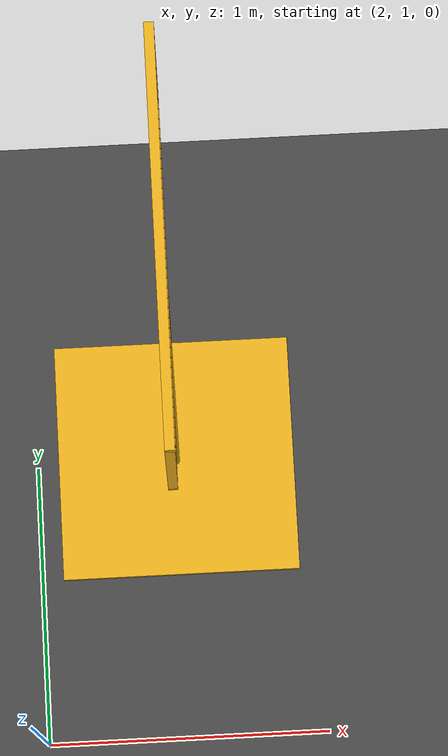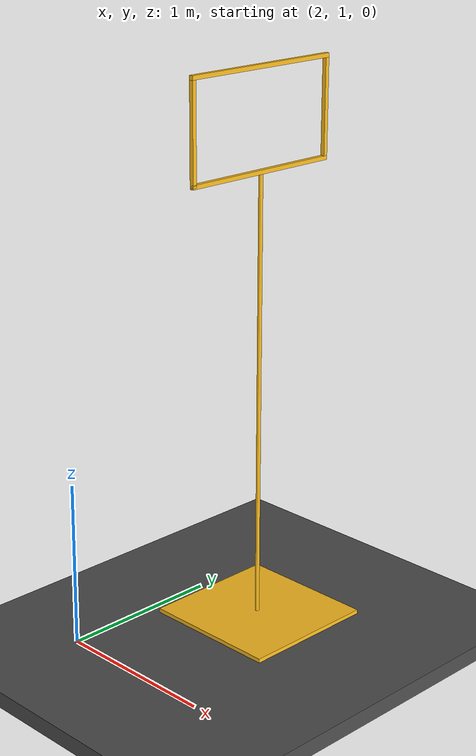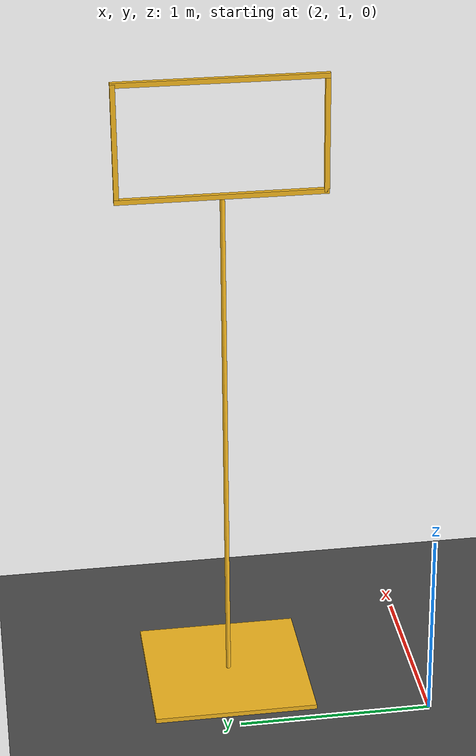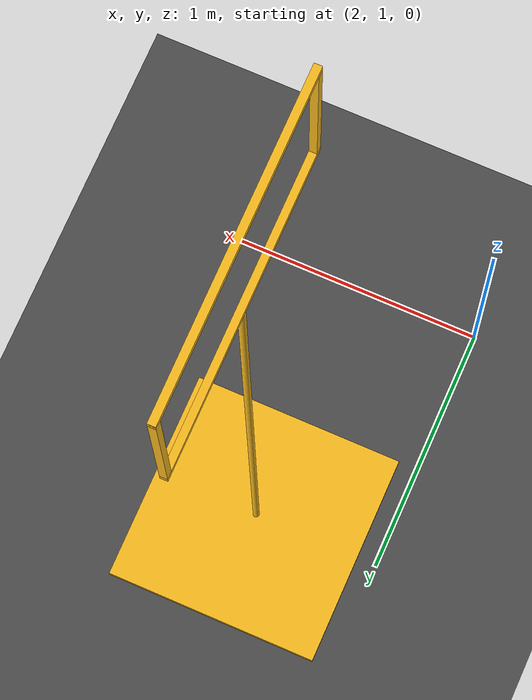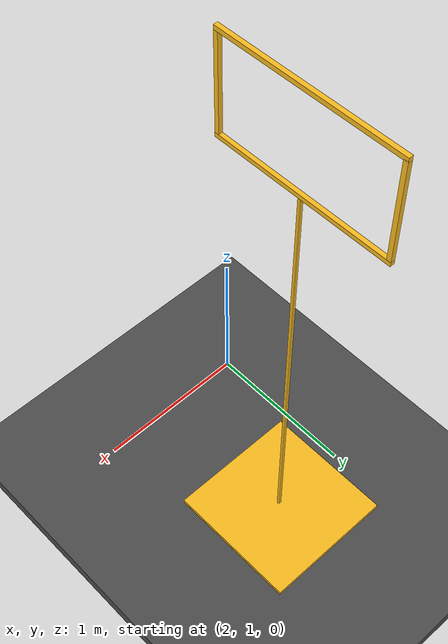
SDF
<sdf version="1.6">
 <world name="default">
  <model name="ground_plane">
   <static>1</static>
   <link name="link">
    <collision name="collision">
     <geometry><plane><normal>0 0 1</normal><size>100 100</size></plane></geometry>
     <surface>
      <contact><collide_bitmask>65535</collide_bitmask></contact>
      <friction><ode><mu>100</mu><mu2>50</mu2></ode></friction>
     </surface>
    </collision>
    <visual name="visual">
     <cast_shadows>0</cast_shadows>
     <geometry><plane><normal>0 0 1</normal><size>100 100</size></plane></geometry>
     <material>
      <script><uri>file://media/materials/scripts/gazebo.material</uri><name>Gazebo/Grey</name></script>
     </material>
    </visual>
   </link>
  </model>
  <model name="asphalt_plane">
   <static>1</static>
   <link name="link">
    <collision name="collision"><geometry><box><size>24.3086 24.3538 0.1</size></box></geometry></collision>
    <visual name="visual">
     <cast_shadows>0</cast_shadows>
     <geometry><box><size>24.3086 24.3538 0.1</size></box></geometry>
     <material>
      <script>
       <uri>model://asphalt_plane/materials/scripts</uri>
       <uri>model://asphalt_plane/materials/textures</uri>
       <name>vrc/asphalt</name>
      </script>
     </material>
    </visual>
   </link>
   <pose>0.83869 0.804741 -0.049 0 -0 0</pose>
  </model>
  <model name="Gate_0">
   <link name="link_2">
    <inertial>
     <mass>1e-08</mass>
     <inertia><ixx>0</ixx><ixy>0</ixy><ixz>0</ixz><iyy>0</iyy><iyz>0</iyz><izz>0</izz></inertia>
     <pose>0 0 0.0125 0 -0 0</pose>
    </inertial>
    <pose>0 -0 0.0125 0 -0 0</pose>
    <visual name="visual">
     <pose>0 0.0125 0 0 -0 0</pose>
     <geometry><box><size>0.85 0.85 0.025</size></box></geometry>
     <material>
      <lighting>1</lighting>
      <script><uri>file://media/materials/scripts/gazebo.material</uri><name>Gazebo/Grey</name></script>
      <shader type="pixel"><normal_map>__default__</normal_map></shader>
      <ambient>0.988 0.741 0.122 1</ambient>
      <diffuse>0.988 0.741 0.122 1</diffuse>
      <specular>0.988 0.741 0.122 1</specular>
      <emissive>0 0 0 1</emissive>
     </material>
    </visual>
    <collision name="collision">
     <pose>0 0.0125 0 0 -0 0</pose>
     <geometry><box><size>0.85 0.85 0.025</size></box></geometry>
     <surface>
      <friction>
       <ode><mu>1</mu><mu2>1</mu2><fdir1>0 0 0</fdir1><slip1>0</slip1><slip2>0</slip2></ode>
       <torsional>
        <coefficient>1</coefficient>
        <patch_radius>0</patch_radius>
        <surface_radius>0</surface_radius>
        <use_patch_radius>1</use_patch_radius>
        <ode><slip>0</slip></ode>
       </torsional>
      </friction>
      <bounce><restitution_coefficient>0</restitution_coefficient><threshold>1e+06</threshold></bounce>
      <contact>
       <collide_without_contact>0</collide_without_contact>
       <collide_without_contact_bitmask>1</collide_without_contact_bitmask>
       <collide_bitmask>1</collide_bitmask>
       <ode>
        <soft_cfm>0</soft_cfm>
        <soft_erp>0.2</soft_erp>
        <kp>1e+13</kp>
        <kd>1</kd>
        <max_vel>0.01</max_vel>
        <min_depth>0</min_depth>
       </ode>
       <bullet>
        <split_impulse>1</split_impulse>
        <split_impulse_penetration_threshold>-0.01</split_impulse_penetration_threshold>
        <soft_cfm>0</soft_cfm>
        <soft_erp>0.2</soft_erp>
        <kp>1e+13</kp>
        <kd>1</kd>
       </bullet>
      </contact>
     </surface>
    </collision>
   </link>
   <link name="link_3">
    <inertial>
     <mass>1.08113e-08</mass>
     <inertia>
      <ixx>6.71432e-09</ixx>
      <ixy>0</ixy>
      <ixz>0</ixz>
      <iyy>6.71432e-09</iyy>
      <iyz>0</iyz>
      <izz>8.44631e-13</izz>
     </inertia>
     <pose>0 0 1.525 0 -0 0</pose>
    </inertial>
    <pose>0 0 1.37026 0 -0 0</pose>
    <visual name="visual">
     <geometry><cylinder><radius>0.0125</radius><length>2.72985</length></cylinder></geometry>
     <material>
      <lighting>1</lighting>
      <script><uri>file://media/materials/scripts/gazebo.material</uri><name>Gazebo/Grey</name></script>
      <shader type="pixel"><normal_map>__default__</normal_map></shader>
      <ambient>0.988 0.741 0.122 1</ambient>
      <diffuse>0.988 0.741 0.122 1</diffuse>
      <specular>0.988 0.741 0.122 1</specular>
      <emissive>0 0 0 1</emissive>
     </material>
    </visual>
    <collision name="collision">
     <geometry><cylinder><radius>0.0125</radius><length>2.72985</length></cylinder></geometry>
     <surface>
      <friction>
       <ode><mu>1</mu><mu2>1</mu2><fdir1>0 0 0</fdir1><slip1>0</slip1><slip2>0</slip2></ode>
       <torsional>
        <coefficient>1</coefficient>
        <patch_radius>0</patch_radius>
        <surface_radius>0</surface_radius>
        <use_patch_radius>1</use_patch_radius>
        <ode><slip>0</slip></ode>
       </torsional>
      </friction>
      <bounce><restitution_coefficient>0</restitution_coefficient><threshold>1e+06</threshold></bounce>
      <contact>
       <collide_without_contact>0</collide_without_contact>
       <collide_without_contact_bitmask>1</collide_without_contact_bitmask>
       <collide_bitmask>1</collide_bitmask>
       <ode>
        <soft_cfm>0</soft_cfm>
        <soft_erp>0.2</soft_erp>
        <kp>1e+13</kp>
        <kd>1</kd>
        <max_vel>0.01</max_vel>
        <min_depth>0</min_depth>
       </ode>
       <bullet>
        <split_impulse>1</split_impulse>
        <split_impulse_penetration_threshold>-0.01</split_impulse_penetration_threshold>
        <soft_cfm>0</soft_cfm>
        <soft_erp>0.2</soft_erp>
        <kp>1e+13</kp>
        <kd>1</kd>
       </bullet>
      </contact>
     </surface>
    </collision>
   </link>
   <link name="link_5">
    <inertial>
     <mass>1e-08</mass>
     <inertia><ixx>0</ixx><ixy>0</ixy><ixz>0</ixz><iyy>0</iyy><iyz>0</iyz><izz>0</izz></inertia>
     <pose>0 0 2.5 0 -0 0</pose>
    </inertial>
    <pose>-0 -0 2.74233 0 -0 0</pose>
    <visual name="visual">
     <geometry><box><size>0.025 1.05 0.025</size></box></geometry>
     <material>
      <lighting>1</lighting>
      <script><uri>file://media/materials/scripts/gazebo.material</uri><name>Gazebo/Grey</name></script>
      <shader type="pixel"><normal_map>__default__</normal_map></shader>
      <ambient>0.988 0.741 0.122 1</ambient>
      <diffuse>0.988 0.741 0.122 1</diffuse>
      <specular>0.988 0.741 0.122 1</specular>
      <emissive>0 0 0 1</emissive>
     </material>
    </visual>
    <collision name="collision">
     <geometry><box><size>0.025 1.05 0.025</size></box></geometry>
     <surface>
      <friction>
       <ode><mu>1</mu><mu2>1</mu2><fdir1>0 0 0</fdir1><slip1>0</slip1><slip2>0</slip2></ode>
       <torsional>
        <coefficient>1</coefficient>
        <patch_radius>0</patch_radius>
        <surface_radius>0</surface_radius>
        <use_patch_radius>1</use_patch_radius>
        <ode><slip>0</slip></ode>
       </torsional>
      </friction>
      <bounce><restitution_coefficient>0</restitution_coefficient><threshold>1e+06</threshold></bounce>
      <contact>
       <collide_without_contact>0</collide_without_contact>
       <collide_without_contact_bitmask>1</collide_without_contact_bitmask>
       <collide_bitmask>1</collide_bitmask>
       <ode>
        <soft_cfm>0</soft_cfm>
        <soft_erp>0.2</soft_erp>
        <kp>1e+13</kp>
        <kd>1</kd>
        <max_vel>0.01</max_vel>
        <min_depth>0</min_depth>
       </ode>
       <bullet>
        <split_impulse>1</split_impulse>
        <split_impulse_penetration_threshold>-0.01</split_impulse_penetration_threshold>
        <soft_cfm>0</soft_cfm>
        <soft_erp>0.2</soft_erp>
        <kp>1e+13</kp>
        <kd>1</kd>
       </bullet>
      </contact>
     </surface>
    </collision>
   </link>
   <link name="link_5_clone">
    <inertial>
     <mass>1e-08</mass>
     <inertia><ixx>0</ixx><ixy>0</ixy><ixz>0</ixz><iyy>0</iyy><iyz>0</iyz><izz>0</izz></inertia>
     <pose>0 0 3.09 0 -0 0</pose>
    </inertial>
    <pose>-0 -0 3.32441 0 -0 0</pose>
    <visual name="visual">
     <geometry><box><size>0.025 1.05 0.025</size></box></geometry>
     <material>
      <lighting>1</lighting>
      <script><uri>file://media/materials/scripts/gazebo.material</uri><name>Gazebo/Grey</name></script>
      <shader type="pixel"><normal_map>__default__</normal_map></shader>
      <ambient>0.988 0.741 0.122 1</ambient>
      <diffuse>0.988 0.741 0.122 1</diffuse>
      <specular>0.988 0.741 0.122 1</specular>
      <emissive>0 0 0 1</emissive>
     </material>
    </visual>
    <collision name="collision">
     <geometry><box><size>0.025 1.05 0.025</size></box></geometry>
     <surface>
      <friction>
       <ode><mu>1</mu><mu2>1</mu2><fdir1>0 0 0</fdir1><slip1>0</slip1><slip2>0</slip2></ode>
       <torsional>
        <coefficient>1</coefficient>
        <patch_radius>0</patch_radius>
        <surface_radius>0</surface_radius>
        <use_patch_radius>1</use_patch_radius>
        <ode><slip>0</slip></ode>
       </torsional>
      </friction>
      <bounce><restitution_coefficient>0</restitution_coefficient><threshold>1e+06</threshold></bounce>
      <contact>
       <collide_without_contact>0</collide_without_contact>
       <collide_without_contact_bitmask>1</collide_without_contact_bitmask>
       <collide_bitmask>1</collide_bitmask>
       <ode>
        <soft_cfm>0</soft_cfm>
        <soft_erp>0.2</soft_erp>
        <kp>1e+13</kp>
        <kd>1</kd>
        <max_vel>0.01</max_vel>
        <min_depth>0</min_depth>
       </ode>
       <bullet>
        <split_impulse>1</split_impulse>
        <split_impulse_penetration_threshold>-0.01</split_impulse_penetration_threshold>
        <soft_cfm>0</soft_cfm>
        <soft_erp>0.2</soft_erp>
        <kp>1e+13</kp>
        <kd>1</kd>
       </bullet>
      </contact>
     </surface>
    </collision>
   </link>
   <link name="link_6">
    <inertial>
     <mass>1e-08</mass>
     <inertia><ixx>0</ixx><ixy>0</ixy><ixz>0</ixz><iyy>0</iyy><iyz>0</iyz><izz>0</izz></inertia>
     <pose>0 0.5125 2.85 0 -0 0</pose>
    </inertial>
    <pose>-0 0.5125 3.04087 0 -0 0</pose>
    <visual name="visual">
     <geometry><box><size>0.025 0.025 0.575</size></box></geometry>
     <material>
      <lighting>1</lighting>
      <script><uri>file://media/materials/scripts/gazebo.material</uri><name>Gazebo/Grey</name></script>
      <shader type="pixel"><normal_map>__default__</normal_map></shader>
      <ambient>0.988 0.741 0.122 1</ambient>
      <diffuse>0.988 0.741 0.122 1</diffuse>
      <specular>0.988 0.741 0.122 1</specular>
      <emissive>0 0 0 1</emissive>
     </material>
    </visual>
    <collision name="collision">
     <geometry><box><size>0.025 0.025 0.575</size></box></geometry>
     <surface>
      <friction>
       <ode><mu>1</mu><mu2>1</mu2><fdir1>0 0 0</fdir1><slip1>0</slip1><slip2>0</slip2></ode>
       <torsional>
        <coefficient>1</coefficient>
        <patch_radius>0</patch_radius>
        <surface_radius>0</surface_radius>
        <use_patch_radius>1</use_patch_radius>
        <ode><slip>0</slip></ode>
       </torsional>
      </friction>
      <bounce><restitution_coefficient>0</restitution_coefficient><threshold>1e+06</threshold></bounce>
      <contact>
       <collide_without_contact>0</collide_without_contact>
       <collide_without_contact_bitmask>1</collide_without_contact_bitmask>
       <collide_bitmask>1</collide_bitmask>
       <ode>
        <soft_cfm>0</soft_cfm>
        <soft_erp>0.2</soft_erp>
        <kp>1e+13</kp>
        <kd>1</kd>
        <max_vel>0.01</max_vel>
        <min_depth>0</min_depth>
       </ode>
       <bullet>
        <split_impulse>1</split_impulse>
        <split_impulse_penetration_threshold>-0.01</split_impulse_penetration_threshold>
        <soft_cfm>0</soft_cfm>
        <soft_erp>0.2</soft_erp>
        <kp>1e+13</kp>
        <kd>1</kd>
       </bullet>
      </contact>
     </surface>
    </collision>
   </link>
   <link name="link_6_clone">
    <inertial>
     <mass>1e-08</mass>
     <inertia><ixx>0</ixx><ixy>0</ixy><ixz>0</ixz><iyy>0</iyy><iyz>0</iyz><izz>0</izz></inertia>
     <pose>0 -0.5125 2.85 0 -0 0</pose>
    </inertial>
    <pose>-0 -0.5125 3.02444 0 -0 0</pose>
    <visual name="visual">
     <geometry><box><size>0.025 0.025 0.575</size></box></geometry>
     <material>
      <lighting>1</lighting>
      <script><uri>file://media/materials/scripts/gazebo.material</uri><name>Gazebo/Grey</name></script>
      <shader type="pixel"><normal_map>__default__</normal_map></shader>
      <ambient>0.988 0.741 0.122 1</ambient>
      <diffuse>0.988 0.741 0.122 1</diffuse>
      <specular>0.988 0.741 0.122 1</specular>
      <emissive>0 0 0 1</emissive>
     </material>
    </visual>
    <collision name="collision">
     <geometry><box><size>0.025 0.025 0.575</size></box></geometry>
     <surface>
      <friction>
       <ode><mu>1</mu><mu2>1</mu2><fdir1>0 0 0</fdir1><slip1>0</slip1><slip2>0</slip2></ode>
       <torsional>
        <coefficient>1</coefficient>
        <patch_radius>0</patch_radius>
        <surface_radius>0</surface_radius>
        <use_patch_radius>1</use_patch_radius>
        <ode><slip>0</slip></ode>
       </torsional>
      </friction>
      <bounce><restitution_coefficient>0</restitution_coefficient><threshold>1e+06</threshold></bounce>
      <contact>
       <collide_without_contact>0</collide_without_contact>
       <collide_without_contact_bitmask>1</collide_without_contact_bitmask>
       <collide_bitmask>1</collide_bitmask>
       <ode>
        <soft_cfm>0</soft_cfm>
        <soft_erp>0.2</soft_erp>
        <kp>1e+13</kp>
        <kd>1</kd>
        <max_vel>0.01</max_vel>
        <min_depth>0</min_depth>
       </ode>
       <bullet>
        <split_impulse>1</split_impulse>
        <split_impulse_penetration_threshold>-0.01</split_impulse_penetration_threshold>
        <soft_cfm>0</soft_cfm>
        <soft_erp>0.2</soft_erp>
        <kp>1e+13</kp>
        <kd>1</kd>
       </bullet>
      </contact>
     </surface>
    </collision>
   </link>
   <joint name="link_2_JOINT_2" type="fixed">
    <parent>link_2</parent>
    <child>link_3</child>
    <physics>
     <ode><limit><cfm>0</cfm><erp>0.2</erp></limit><suspension><cfm>0</cfm><erp>0.2</erp></suspension></ode>
    </physics>
   </joint>
   <joint name="link_3_JOINT_3" type="fixed">
    <parent>link_3</parent>
    <child>link_5</child>
    <physics>
     <ode><limit><cfm>0</cfm><erp>0.2</erp></limit><suspension><cfm>0</cfm><erp>0.2</erp></suspension></ode>
    </physics>
   </joint>
   <joint name="link_5_JOINT_0" type="fixed">
    <parent>link_5</parent>
    <child>link_6_clone</child>
    <physics>
     <ode><limit><cfm>0</cfm><erp>0.2</erp></limit><suspension><cfm>0</cfm><erp>0.2</erp></suspension></ode>
    </physics>
   </joint>
   <joint name="link_5_JOINT_1" type="fixed">
    <parent>link_5</parent>
    <child>link_6</child>
    <physics>
     <ode><limit><cfm>0</cfm><erp>0.2</erp></limit><suspension><cfm>0</cfm><erp>0.2</erp></suspension></ode>
    </physics>
   </joint>
   <joint name="link_6_JOINT_3" type="fixed">
    <parent>link_6</parent>
    <child>link_5_clone</child>
    <physics>
     <ode><limit><cfm>0</cfm><erp>0.2</erp></limit><suspension><cfm>0</cfm><erp>0.2</erp></suspension></ode>
    </physics>
   </joint>
   <joint name="link_6_clone_JOINT_2" type="fixed">
    <parent>link_6_clone</parent>
    <child>link_5_clone</child>
    <physics>
     <ode><limit><cfm>0</cfm><erp>0.2</erp></limit><suspension><cfm>0</cfm><erp>0.2</erp></suspension></ode>
    </physics>
   </joint>
   <static>0</static>
   <pose>2.5 2 0.001005 -6e-06 4e-06 0</pose>
  </model>
 </world>
</sdf>
